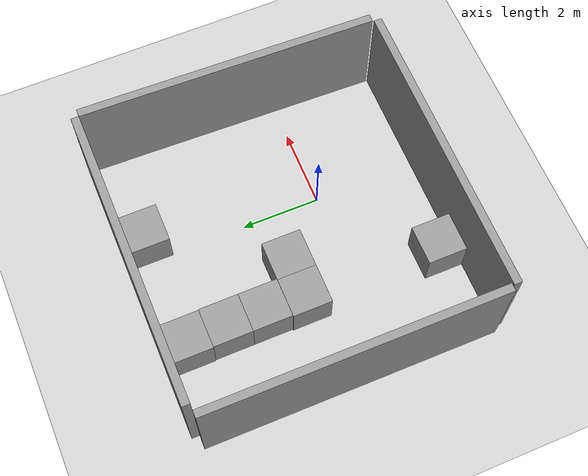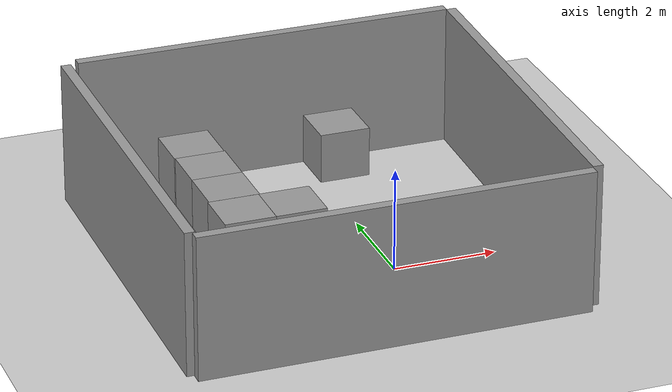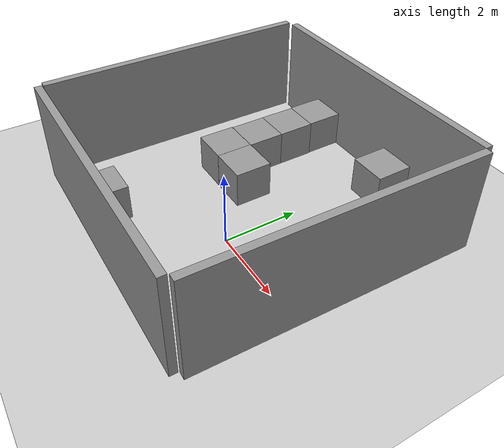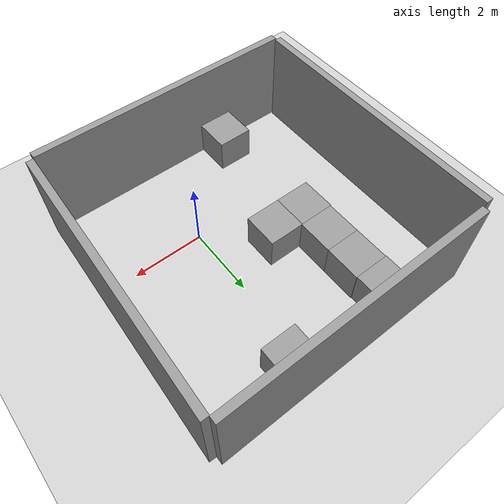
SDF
<sdf version="1.7">
 <world name="default">
  <light name="sun" type="directional">
   <pose>0 0 10 0 -0 0</pose>
   <diffuse>0.8 0.8 0.8 1</diffuse>
   <specular>0.2 0.2 0.2 1</specular>
   <attenuation>
    <range>1000</range>
    <constant>0.9</constant>
    <linear>0.01</linear>
    <quadratic>0.001</quadratic>
   </attenuation>
   <direction>-0.5 0.1 -0.9</direction>
   <spot><inner_angle>0</inner_angle><outer_angle>0</outer_angle><falloff>0</falloff></spot>
  </light>
  <model name="ground_plane">
   <static>1</static>
   <link name="link">
    <collision name="collision">
     <geometry><plane><normal>0 0 1</normal><size>100 100</size></plane></geometry>
     <surface>
      <contact><collide_bitmask>65535</collide_bitmask></contact>
      <friction><ode><mu>100</mu><mu2>50</mu2></ode></friction>
     </surface>
    </collision>
    <visual name="visual">
     <cast_shadows>0</cast_shadows>
     <geometry><plane><normal>0 0 1</normal><size>100 100</size></plane></geometry>
     <material>
      <script><uri>file://media/materials/scripts/gazebo.material</uri><name>Gazebo/Grey</name></script>
     </material>
    </visual>
   </link>
  </model>
  <gravity>0 0 -9.8</gravity>
  <magnetic_field>6e-06 2.3e-05 -4.2e-05</magnetic_field>
  <atmosphere type="adiabatic"/>
  <physics type="ode">
   <max_step_size>0.001</max_step_size>
   <real_time_factor>1</real_time_factor>
   <real_time_update_rate>1000</real_time_update_rate>
  </physics>
  <scene><ambient>0.4 0.4 0.4 1</ambient><background>0.7 0.7 0.7 1</background><shadows>1</shadows></scene>
  <spherical_coordinates>
   <surface_model>EARTH_WGS84</surface_model>
   <latitude_deg>0</latitude_deg>
   <longitude_deg>0</longitude_deg>
   <elevation>0</elevation>
   <heading_deg>0</heading_deg>
  </spherical_coordinates>
  <model name="grey_wall">
   <static>1</static>
   <link name="link">
    <pose>0 0 1.4 0 -0 0</pose>
    <collision name="collision"><geometry><box><size>7.5 0.2 2.8</size></box></geometry></collision>
    <visual name="visual">
     <cast_shadows>0</cast_shadows>
     <geometry><box><size>7.5 0.2 2.8</size></box></geometry>
     <material>
      <script>
       <uri>model://grey_wall/materials/scripts</uri>
       <uri>model://grey_wall/materials/textures</uri>
       <name>vrc/grey_wall</name>
      </script>
     </material>
    </visual>
   </link>
   <pose>-1.00959 -2.72282 0 0 -0 0</pose>
  </model>
  <model name="grey_wall_0">
   <static>1</static>
   <link name="link">
    <pose>0 0 1.4 0 -0 0</pose>
    <collision name="collision"><geometry><box><size>7.5 0.2 2.8</size></box></geometry></collision>
    <visual name="visual">
     <cast_shadows>0</cast_shadows>
     <geometry><box><size>7.5 0.2 2.8</size></box></geometry>
     <material>
      <script>
       <uri>model://grey_wall/materials/scripts</uri>
       <uri>model://grey_wall/materials/textures</uri>
       <name>vrc/grey_wall</name>
      </script>
     </material>
    </visual>
   </link>
   <pose>-0.773711 5.00186 0 0 -0 0</pose>
  </model>
  <model name="grey_wall_1">
   <static>1</static>
   <link name="link">
    <pose>0 0 1.4 0 -0 0</pose>
    <collision name="collision"><geometry><box><size>7.5 0.2 2.8</size></box></geometry></collision>
    <visual name="visual">
     <cast_shadows>0</cast_shadows>
     <geometry><box><size>7.5 0.2 2.8</size></box></geometry>
     <material>
      <script>
       <uri>model://grey_wall/materials/scripts</uri>
       <uri>model://grey_wall/materials/textures</uri>
       <name>vrc/grey_wall</name>
      </script>
     </material>
    </visual>
   </link>
   <pose>2.95919 1.15222 0 0 0 -1.59849</pose>
  </model>
  <model name="grey_wall_1_clone">
   <static>1</static>
   <link name="link">
    <pose>0 0 1.4 0 -0 0</pose>
    <collision name="collision"><geometry><box><size>7.5 0.2 2.8</size></box></geometry></collision>
    <visual name="visual">
     <cast_shadows>0</cast_shadows>
     <geometry><box><size>7.5 0.2 2.8</size></box></geometry>
     <material>
      <script>
       <uri>model://grey_wall/materials/scripts</uri>
       <uri>model://grey_wall/materials/textures</uri>
       <name>vrc/grey_wall</name>
      </script>
     </material>
    </visual>
   </link>
   <pose>-4.78271 1.16179 0 0 0 -1.57465</pose>
  </model>
  <model name="unit_box">
   <pose>-2.48072 4.40158 0.5 0 -0 0.000571</pose>
   <link name="link">
    <inertial>
     <mass>1</mass>
     <inertia>
      <ixx>0.166667</ixx>
      <ixy>0</ixy>
      <ixz>0</ixz>
      <iyy>0.166667</iyy>
      <iyz>0</iyz>
      <izz>0.166667</izz>
     </inertia>
    </inertial>
    <collision name="collision"><geometry><box><size>1 1 1</size></box></geometry></collision>
    <visual name="visual">
     <geometry><box><size>1 1 1</size></box></geometry>
     <material>
      <script><name>Gazebo/Grey</name><uri>file://media/materials/scripts/gazebo.material</uri></script>
     </material>
    </visual>
   </link>
  </model>
  <model name="unit_box_0">
   <pose>-2.46251 3.40147 0.5 0 -0 0.000801</pose>
   <link name="link">
    <inertial>
     <mass>1</mass>
     <inertia>
      <ixx>0.166667</ixx>
      <ixy>0</ixy>
      <ixz>0</ixz>
      <iyy>0.166667</iyy>
      <iyz>0</iyz>
      <izz>0.166667</izz>
     </inertia>
    </inertial>
    <collision name="collision"><geometry><box><size>1 1 1</size></box></geometry></collision>
    <visual name="visual">
     <geometry><box><size>1 1 1</size></box></geometry>
     <material>
      <script><name>Gazebo/Grey</name><uri>file://media/materials/scripts/gazebo.material</uri></script>
     </material>
    </visual>
   </link>
  </model>
  <model name="unit_box_1">
   <pose>-2.46151 2.40144 0.499995 0 -1e-05 0.000832</pose>
   <link name="link">
    <inertial>
     <mass>1</mass>
     <inertia>
      <ixx>0.166667</ixx>
      <ixy>0</ixy>
      <ixz>0</ixz>
      <iyy>0.166667</iyy>
      <iyz>0</iyz>
      <izz>0.166667</izz>
     </inertia>
    </inertial>
    <collision name="collision"><geometry><box><size>1 1 1</size></box></geometry></collision>
    <visual name="visual">
     <geometry><box><size>1 1 1</size></box></geometry>
     <material>
      <script><name>Gazebo/Grey</name><uri>file://media/materials/scripts/gazebo.material</uri></script>
     </material>
    </visual>
   </link>
  </model>
  <model name="unit_box_2">
   <pose>-2.48584 1.40046 0.499995 1e-05 -0 -0.000233</pose>
   <link name="link">
    <inertial>
     <mass>1</mass>
     <inertia>
      <ixx>0.166667</ixx>
      <ixy>0</ixy>
      <ixz>0</ixz>
      <iyy>0.166667</iyy>
      <iyz>0</iyz>
      <izz>0.166667</izz>
     </inertia>
    </inertial>
    <collision name="collision"><geometry><box><size>1 1 1</size></box></geometry></collision>
    <visual name="visual">
     <geometry><box><size>1 1 1</size></box></geometry>
     <material>
      <script><name>Gazebo/Grey</name><uri>file://media/materials/scripts/gazebo.material</uri></script>
     </material>
    </visual>
   </link>
  </model>
  <model name="unit_box_3">
   <pose>-1.48547 1.402 0.499995 0 1e-05 0.000407</pose>
   <link name="link">
    <inertial>
     <mass>1</mass>
     <inertia>
      <ixx>0.166667</ixx>
      <ixy>0</ixy>
      <ixz>0</ixz>
      <iyy>0.166667</iyy>
      <iyz>0</iyz>
      <izz>0.166667</izz>
     </inertia>
    </inertial>
    <collision name="collision"><geometry><box><size>1 1 1</size></box></geometry></collision>
    <visual name="visual">
     <geometry><box><size>1 1 1</size></box></geometry>
     <material>
      <script><name>Gazebo/Grey</name><uri>file://media/materials/scripts/gazebo.material</uri></script>
     </material>
    </visual>
   </link>
  </model>
  <model name="unit_box_4">
   <pose>-2.49389 -2.12282 0.499995 -1e-05 -0 -0</pose>
   <link name="link">
    <inertial>
     <mass>1</mass>
     <inertia>
      <ixx>0.166667</ixx>
      <ixy>0</ixy>
      <ixz>0</ixz>
      <iyy>0.166667</iyy>
      <iyz>0</iyz>
      <izz>0.166667</izz>
     </inertia>
    </inertial>
    <collision name="collision"><geometry><box><size>1 1 1</size></box></geometry></collision>
    <visual name="visual">
     <geometry><box><size>1 1 1</size></box></geometry>
     <material>
      <script><name>Gazebo/Grey</name><uri>file://media/materials/scripts/gazebo.material</uri></script>
     </material>
    </visual>
   </link>
  </model>
  <model name="unit_box_5">
   <pose>0.490738 4.40186 0.499995 0 -1e-05 0</pose>
   <link name="link">
    <inertial>
     <mass>1</mass>
     <inertia>
      <ixx>0.166667</ixx>
      <ixy>0</ixy>
      <ixz>0</ixz>
      <iyy>0.166667</iyy>
      <iyz>0</iyz>
      <izz>0.166667</izz>
     </inertia>
    </inertial>
    <collision name="collision"><geometry><box><size>1 1 1</size></box></geometry></collision>
    <visual name="visual">
     <geometry><box><size>1 1 1</size></box></geometry>
     <material>
      <script><name>Gazebo/Grey</name><uri>file://media/materials/scripts/gazebo.material</uri></script>
     </material>
    </visual>
   </link>
  </model>
 </world>
</sdf>
